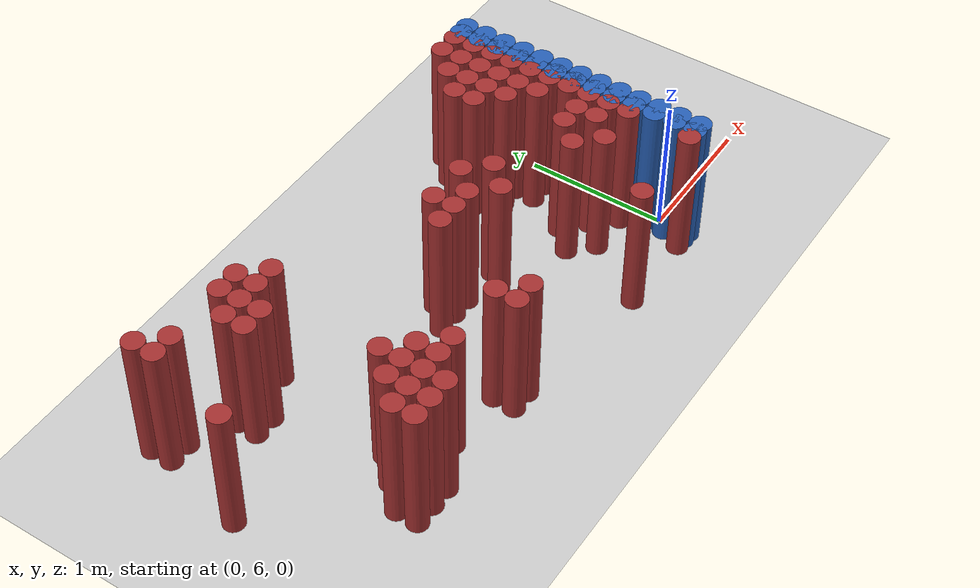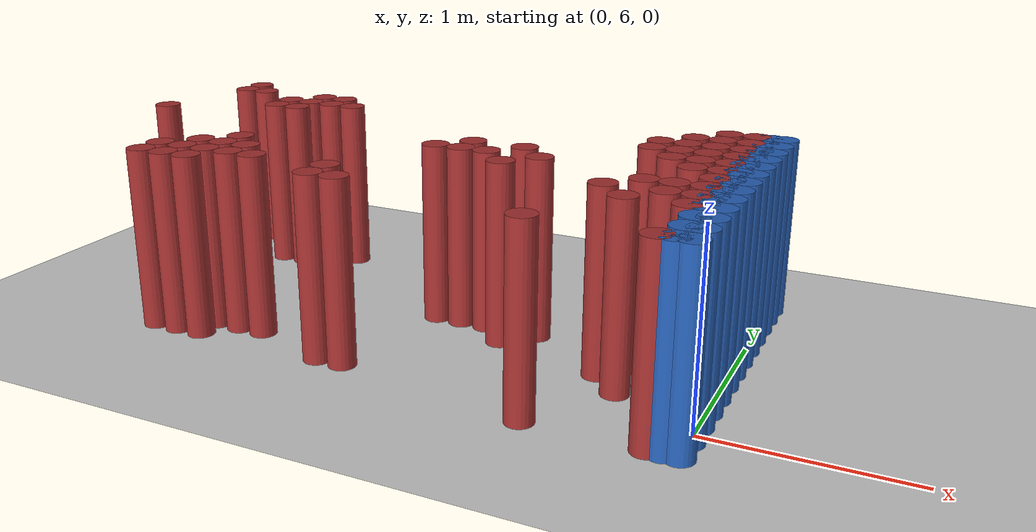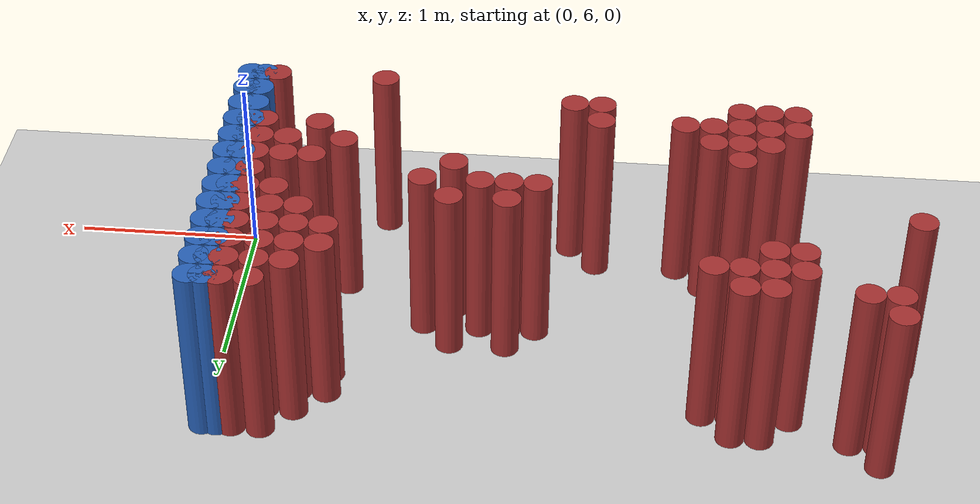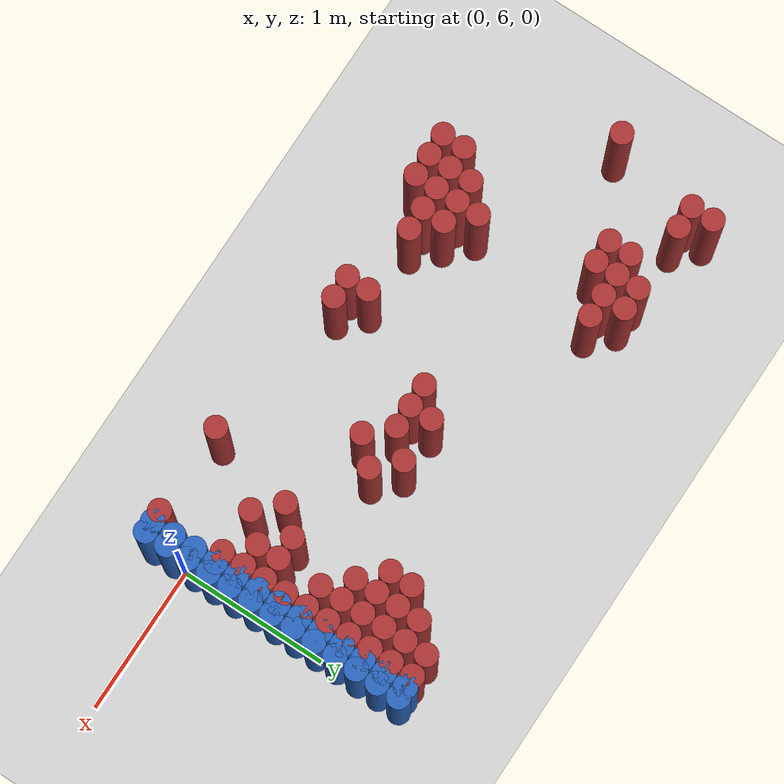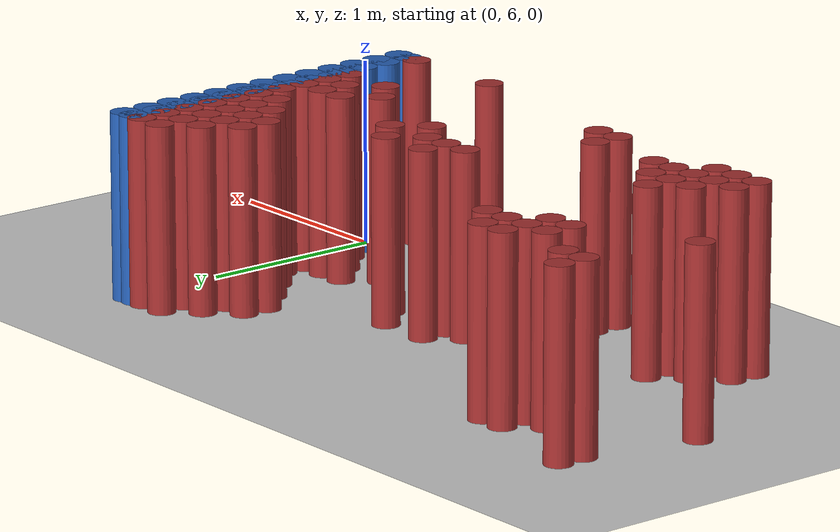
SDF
<sdf version="1.6">
 <world name="barn_world">
  <model name="ground_plane">
   <static>1</static>
   <link name="link">
    <collision name="collision">
     <geometry><plane><normal>0 0 1</normal><size>100 100</size></plane></geometry>
    </collision>
    <visual name="visual">
     <geometry><plane><normal>0 0 1</normal><size>100 100</size></plane></geometry>
     <material>
      <script><uri>file://media/materials/scripts/gazebo.material</uri><name>Gazebo/Grey</name></script>
     </material>
    </visual>
   </link>
  </model>
  <model name="unit_cylinder_211">
   <static>1</static>
   <pose>-3.6000 6.8250 0.5 0 0 0</pose>
   <link name="link">
    <collision name="collision">
     <geometry><cylinder><radius>0.075</radius><length>1</length></cylinder></geometry>
    </collision>
    <visual name="visual">
     <geometry><cylinder><radius>0.075</radius><length>1</length></cylinder></geometry>
     <material><ambient>0.648 0.192 0.192 1</ambient><diffuse>0.648 0.192 0.192 1</diffuse></material>
    </visual>
   </link>
  </model>
  <model name="unit_cylinder_219">
   <static>1</static>
   <pose>-3.4500 7.4250 0.5 0 0 0</pose>
   <link name="link">
    <collision name="collision">
     <geometry><cylinder><radius>0.075</radius><length>1</length></cylinder></geometry>
    </collision>
    <visual name="visual">
     <geometry><cylinder><radius>0.075</radius><length>1</length></cylinder></geometry>
     <material><ambient>0.648 0.192 0.192 1</ambient><diffuse>0.648 0.192 0.192 1</diffuse></material>
    </visual>
   </link>
  </model>
  <model name="unit_cylinder_220">
   <static>1</static>
   <pose>-3.4500 7.5750 0.5 0 0 0</pose>
   <link name="link">
    <collision name="collision">
     <geometry><cylinder><radius>0.075</radius><length>1</length></cylinder></geometry>
    </collision>
    <visual name="visual">
     <geometry><cylinder><radius>0.075</radius><length>1</length></cylinder></geometry>
     <material><ambient>0.648 0.192 0.192 1</ambient><diffuse>0.648 0.192 0.192 1</diffuse></material>
    </visual>
   </link>
  </model>
  <model name="unit_cylinder_227">
   <static>1</static>
   <pose>-3.3000 7.4250 0.5 0 0 0</pose>
   <link name="link">
    <collision name="collision">
     <geometry><cylinder><radius>0.075</radius><length>1</length></cylinder></geometry>
    </collision>
    <visual name="visual">
     <geometry><cylinder><radius>0.075</radius><length>1</length></cylinder></geometry>
     <material><ambient>0.648 0.192 0.192 1</ambient><diffuse>0.648 0.192 0.192 1</diffuse></material>
    </visual>
   </link>
  </model>
  <model name="unit_cylinder_230">
   <static>1</static>
   <pose>-3.0000 5.9250 0.5 0 0 0</pose>
   <link name="link">
    <collision name="collision">
     <geometry><cylinder><radius>0.075</radius><length>1</length></cylinder></geometry>
    </collision>
    <visual name="visual">
     <geometry><cylinder><radius>0.075</radius><length>1</length></cylinder></geometry>
     <material><ambient>0.648 0.192 0.192 1</ambient><diffuse>0.648 0.192 0.192 1</diffuse></material>
    </visual>
   </link>
  </model>
  <model name="unit_cylinder_231">
   <static>1</static>
   <pose>-3.0000 6.0750 0.5 0 0 0</pose>
   <link name="link">
    <collision name="collision">
     <geometry><cylinder><radius>0.075</radius><length>1</length></cylinder></geometry>
    </collision>
    <visual name="visual">
     <geometry><cylinder><radius>0.075</radius><length>1</length></cylinder></geometry>
     <material><ambient>0.648 0.192 0.192 1</ambient><diffuse>0.648 0.192 0.192 1</diffuse></material>
    </visual>
   </link>
  </model>
  <model name="unit_cylinder_232">
   <static>1</static>
   <pose>-3.0000 7.1250 0.5 0 0 0</pose>
   <link name="link">
    <collision name="collision">
     <geometry><cylinder><radius>0.075</radius><length>1</length></cylinder></geometry>
    </collision>
    <visual name="visual">
     <geometry><cylinder><radius>0.075</radius><length>1</length></cylinder></geometry>
     <material><ambient>0.648 0.192 0.192 1</ambient><diffuse>0.648 0.192 0.192 1</diffuse></material>
    </visual>
   </link>
  </model>
  <model name="unit_cylinder_233">
   <static>1</static>
   <pose>-3.0000 7.2750 0.5 0 0 0</pose>
   <link name="link">
    <collision name="collision">
     <geometry><cylinder><radius>0.075</radius><length>1</length></cylinder></geometry>
    </collision>
    <visual name="visual">
     <geometry><cylinder><radius>0.075</radius><length>1</length></cylinder></geometry>
     <material><ambient>0.648 0.192 0.192 1</ambient><diffuse>0.648 0.192 0.192 1</diffuse></material>
    </visual>
   </link>
  </model>
  <model name="unit_cylinder_235">
   <static>1</static>
   <pose>-2.8500 5.9250 0.5 0 0 0</pose>
   <link name="link">
    <collision name="collision">
     <geometry><cylinder><radius>0.075</radius><length>1</length></cylinder></geometry>
    </collision>
    <visual name="visual">
     <geometry><cylinder><radius>0.075</radius><length>1</length></cylinder></geometry>
     <material><ambient>0.648 0.192 0.192 1</ambient><diffuse>0.648 0.192 0.192 1</diffuse></material>
    </visual>
   </link>
  </model>
  <model name="unit_cylinder_236">
   <static>1</static>
   <pose>-2.8500 6.0750 0.5 0 0 0</pose>
   <link name="link">
    <collision name="collision">
     <geometry><cylinder><radius>0.075</radius><length>1</length></cylinder></geometry>
    </collision>
    <visual name="visual">
     <geometry><cylinder><radius>0.075</radius><length>1</length></cylinder></geometry>
     <material><ambient>0.648 0.192 0.192 1</ambient><diffuse>0.648 0.192 0.192 1</diffuse></material>
    </visual>
   </link>
  </model>
  <model name="unit_cylinder_237">
   <static>1</static>
   <pose>-2.8500 6.2250 0.5 0 0 0</pose>
   <link name="link">
    <collision name="collision">
     <geometry><cylinder><radius>0.075</radius><length>1</length></cylinder></geometry>
    </collision>
    <visual name="visual">
     <geometry><cylinder><radius>0.075</radius><length>1</length></cylinder></geometry>
     <material><ambient>0.648 0.192 0.192 1</ambient><diffuse>0.648 0.192 0.192 1</diffuse></material>
    </visual>
   </link>
  </model>
  <model name="unit_cylinder_238">
   <static>1</static>
   <pose>-2.8500 7.1250 0.5 0 0 0</pose>
   <link name="link">
    <collision name="collision">
     <geometry><cylinder><radius>0.075</radius><length>1</length></cylinder></geometry>
    </collision>
    <visual name="visual">
     <geometry><cylinder><radius>0.075</radius><length>1</length></cylinder></geometry>
     <material><ambient>0.648 0.192 0.192 1</ambient><diffuse>0.648 0.192 0.192 1</diffuse></material>
    </visual>
   </link>
  </model>
  <model name="unit_cylinder_239">
   <static>1</static>
   <pose>-2.8500 7.2750 0.5 0 0 0</pose>
   <link name="link">
    <collision name="collision">
     <geometry><cylinder><radius>0.075</radius><length>1</length></cylinder></geometry>
    </collision>
    <visual name="visual">
     <geometry><cylinder><radius>0.075</radius><length>1</length></cylinder></geometry>
     <material><ambient>0.648 0.192 0.192 1</ambient><diffuse>0.648 0.192 0.192 1</diffuse></material>
    </visual>
   </link>
  </model>
  <model name="unit_cylinder_240">
   <static>1</static>
   <pose>-2.8500 7.4250 0.5 0 0 0</pose>
   <link name="link">
    <collision name="collision">
     <geometry><cylinder><radius>0.075</radius><length>1</length></cylinder></geometry>
    </collision>
    <visual name="visual">
     <geometry><cylinder><radius>0.075</radius><length>1</length></cylinder></geometry>
     <material><ambient>0.648 0.192 0.192 1</ambient><diffuse>0.648 0.192 0.192 1</diffuse></material>
    </visual>
   </link>
  </model>
  <model name="unit_cylinder_241">
   <static>1</static>
   <pose>-2.7000 5.9250 0.5 0 0 0</pose>
   <link name="link">
    <collision name="collision">
     <geometry><cylinder><radius>0.075</radius><length>1</length></cylinder></geometry>
    </collision>
    <visual name="visual">
     <geometry><cylinder><radius>0.075</radius><length>1</length></cylinder></geometry>
     <material><ambient>0.648 0.192 0.192 1</ambient><diffuse>0.648 0.192 0.192 1</diffuse></material>
    </visual>
   </link>
  </model>
  <model name="unit_cylinder_242">
   <static>1</static>
   <pose>-2.7000 6.0750 0.5 0 0 0</pose>
   <link name="link">
    <collision name="collision">
     <geometry><cylinder><radius>0.075</radius><length>1</length></cylinder></geometry>
    </collision>
    <visual name="visual">
     <geometry><cylinder><radius>0.075</radius><length>1</length></cylinder></geometry>
     <material><ambient>0.648 0.192 0.192 1</ambient><diffuse>0.648 0.192 0.192 1</diffuse></material>
    </visual>
   </link>
  </model>
  <model name="unit_cylinder_243">
   <static>1</static>
   <pose>-2.7000 6.2250 0.5 0 0 0</pose>
   <link name="link">
    <collision name="collision">
     <geometry><cylinder><radius>0.075</radius><length>1</length></cylinder></geometry>
    </collision>
    <visual name="visual">
     <geometry><cylinder><radius>0.075</radius><length>1</length></cylinder></geometry>
     <material><ambient>0.648 0.192 0.192 1</ambient><diffuse>0.648 0.192 0.192 1</diffuse></material>
    </visual>
   </link>
  </model>
  <model name="unit_cylinder_244">
   <static>1</static>
   <pose>-2.7000 6.3750 0.5 0 0 0</pose>
   <link name="link">
    <collision name="collision">
     <geometry><cylinder><radius>0.075</radius><length>1</length></cylinder></geometry>
    </collision>
    <visual name="visual">
     <geometry><cylinder><radius>0.075</radius><length>1</length></cylinder></geometry>
     <material><ambient>0.648 0.192 0.192 1</ambient><diffuse>0.648 0.192 0.192 1</diffuse></material>
    </visual>
   </link>
  </model>
  <model name="unit_cylinder_245">
   <static>1</static>
   <pose>-2.7000 7.2750 0.5 0 0 0</pose>
   <link name="link">
    <collision name="collision">
     <geometry><cylinder><radius>0.075</radius><length>1</length></cylinder></geometry>
    </collision>
    <visual name="visual">
     <geometry><cylinder><radius>0.075</radius><length>1</length></cylinder></geometry>
     <material><ambient>0.648 0.192 0.192 1</ambient><diffuse>0.648 0.192 0.192 1</diffuse></material>
    </visual>
   </link>
  </model>
  <model name="unit_cylinder_246">
   <static>1</static>
   <pose>-2.7000 7.4250 0.5 0 0 0</pose>
   <link name="link">
    <collision name="collision">
     <geometry><cylinder><radius>0.075</radius><length>1</length></cylinder></geometry>
    </collision>
    <visual name="visual">
     <geometry><cylinder><radius>0.075</radius><length>1</length></cylinder></geometry>
     <material><ambient>0.648 0.192 0.192 1</ambient><diffuse>0.648 0.192 0.192 1</diffuse></material>
    </visual>
   </link>
  </model>
  <model name="unit_cylinder_247">
   <static>1</static>
   <pose>-2.5500 6.0750 0.5 0 0 0</pose>
   <link name="link">
    <collision name="collision">
     <geometry><cylinder><radius>0.075</radius><length>1</length></cylinder></geometry>
    </collision>
    <visual name="visual">
     <geometry><cylinder><radius>0.075</radius><length>1</length></cylinder></geometry>
     <material><ambient>0.648 0.192 0.192 1</ambient><diffuse>0.648 0.192 0.192 1</diffuse></material>
    </visual>
   </link>
  </model>
  <model name="unit_cylinder_248">
   <static>1</static>
   <pose>-2.5500 6.2250 0.5 0 0 0</pose>
   <link name="link">
    <collision name="collision">
     <geometry><cylinder><radius>0.075</radius><length>1</length></cylinder></geometry>
    </collision>
    <visual name="visual">
     <geometry><cylinder><radius>0.075</radius><length>1</length></cylinder></geometry>
     <material><ambient>0.648 0.192 0.192 1</ambient><diffuse>0.648 0.192 0.192 1</diffuse></material>
    </visual>
   </link>
  </model>
  <model name="unit_cylinder_249">
   <static>1</static>
   <pose>-2.5500 7.2750 0.5 0 0 0</pose>
   <link name="link">
    <collision name="collision">
     <geometry><cylinder><radius>0.075</radius><length>1</length></cylinder></geometry>
    </collision>
    <visual name="visual">
     <geometry><cylinder><radius>0.075</radius><length>1</length></cylinder></geometry>
     <material><ambient>0.648 0.192 0.192 1</ambient><diffuse>0.648 0.192 0.192 1</diffuse></material>
    </visual>
   </link>
  </model>
  <model name="unit_cylinder_251">
   <static>1</static>
   <pose>-2.4000 6.0750 0.5 0 0 0</pose>
   <link name="link">
    <collision name="collision">
     <geometry><cylinder><radius>0.075</radius><length>1</length></cylinder></geometry>
    </collision>
    <visual name="visual">
     <geometry><cylinder><radius>0.075</radius><length>1</length></cylinder></geometry>
     <material><ambient>0.648 0.192 0.192 1</ambient><diffuse>0.648 0.192 0.192 1</diffuse></material>
    </visual>
   </link>
  </model>
  <model name="unit_cylinder_254">
   <static>1</static>
   <pose>-1.9500 5.9250 0.5 0 0 0</pose>
   <link name="link">
    <collision name="collision">
     <geometry><cylinder><radius>0.075</radius><length>1</length></cylinder></geometry>
    </collision>
    <visual name="visual">
     <geometry><cylinder><radius>0.075</radius><length>1</length></cylinder></geometry>
     <material><ambient>0.648 0.192 0.192 1</ambient><diffuse>0.648 0.192 0.192 1</diffuse></material>
    </visual>
   </link>
  </model>
  <model name="unit_cylinder_255">
   <static>1</static>
   <pose>-1.9500 6.0750 0.5 0 0 0</pose>
   <link name="link">
    <collision name="collision">
     <geometry><cylinder><radius>0.075</radius><length>1</length></cylinder></geometry>
    </collision>
    <visual name="visual">
     <geometry><cylinder><radius>0.075</radius><length>1</length></cylinder></geometry>
     <material><ambient>0.648 0.192 0.192 1</ambient><diffuse>0.648 0.192 0.192 1</diffuse></material>
    </visual>
   </link>
  </model>
  <model name="unit_cylinder_256">
   <static>1</static>
   <pose>-1.8000 5.9250 0.5 0 0 0</pose>
   <link name="link">
    <collision name="collision">
     <geometry><cylinder><radius>0.075</radius><length>1</length></cylinder></geometry>
    </collision>
    <visual name="visual">
     <geometry><cylinder><radius>0.075</radius><length>1</length></cylinder></geometry>
     <material><ambient>0.648 0.192 0.192 1</ambient><diffuse>0.648 0.192 0.192 1</diffuse></material>
    </visual>
   </link>
  </model>
  <model name="unit_cylinder_259">
   <static>1</static>
   <pose>-1.6500 6.6750 0.5 0 0 0</pose>
   <link name="link">
    <collision name="collision">
     <geometry><cylinder><radius>0.075</radius><length>1</length></cylinder></geometry>
    </collision>
    <visual name="visual">
     <geometry><cylinder><radius>0.075</radius><length>1</length></cylinder></geometry>
     <material><ambient>0.648 0.192 0.192 1</ambient><diffuse>0.648 0.192 0.192 1</diffuse></material>
    </visual>
   </link>
  </model>
  <model name="unit_cylinder_261">
   <static>1</static>
   <pose>-1.5000 6.6750 0.5 0 0 0</pose>
   <link name="link">
    <collision name="collision">
     <geometry><cylinder><radius>0.075</radius><length>1</length></cylinder></geometry>
    </collision>
    <visual name="visual">
     <geometry><cylinder><radius>0.075</radius><length>1</length></cylinder></geometry>
     <material><ambient>0.648 0.192 0.192 1</ambient><diffuse>0.648 0.192 0.192 1</diffuse></material>
    </visual>
   </link>
  </model>
  <model name="unit_cylinder_262">
   <static>1</static>
   <pose>-1.5000 6.8250 0.5 0 0 0</pose>
   <link name="link">
    <collision name="collision">
     <geometry><cylinder><radius>0.075</radius><length>1</length></cylinder></geometry>
    </collision>
    <visual name="visual">
     <geometry><cylinder><radius>0.075</radius><length>1</length></cylinder></geometry>
     <material><ambient>0.648 0.192 0.192 1</ambient><diffuse>0.648 0.192 0.192 1</diffuse></material>
    </visual>
   </link>
  </model>
  <model name="unit_cylinder_265">
   <static>1</static>
   <pose>-1.3500 6.6750 0.5 0 0 0</pose>
   <link name="link">
    <collision name="collision">
     <geometry><cylinder><radius>0.075</radius><length>1</length></cylinder></geometry>
    </collision>
    <visual name="visual">
     <geometry><cylinder><radius>0.075</radius><length>1</length></cylinder></geometry>
     <material><ambient>0.648 0.192 0.192 1</ambient><diffuse>0.648 0.192 0.192 1</diffuse></material>
    </visual>
   </link>
  </model>
  <model name="unit_cylinder_267">
   <static>1</static>
   <pose>-1.2000 6.5250 0.5 0 0 0</pose>
   <link name="link">
    <collision name="collision">
     <geometry><cylinder><radius>0.075</radius><length>1</length></cylinder></geometry>
    </collision>
    <visual name="visual">
     <geometry><cylinder><radius>0.075</radius><length>1</length></cylinder></geometry>
     <material><ambient>0.648 0.192 0.192 1</ambient><diffuse>0.648 0.192 0.192 1</diffuse></material>
    </visual>
   </link>
  </model>
  <model name="unit_cylinder_268">
   <static>1</static>
   <pose>-1.2000 6.8250 0.5 0 0 0</pose>
   <link name="link">
    <collision name="collision">
     <geometry><cylinder><radius>0.075</radius><length>1</length></cylinder></geometry>
    </collision>
    <visual name="visual">
     <geometry><cylinder><radius>0.075</radius><length>1</length></cylinder></geometry>
     <material><ambient>0.648 0.192 0.192 1</ambient><diffuse>0.648 0.192 0.192 1</diffuse></material>
    </visual>
   </link>
  </model>
  <model name="unit_cylinder_270">
   <static>1</static>
   <pose>-1.0500 6.6750 0.5 0 0 0</pose>
   <link name="link">
    <collision name="collision">
     <geometry><cylinder><radius>0.075</radius><length>1</length></cylinder></geometry>
    </collision>
    <visual name="visual">
     <geometry><cylinder><radius>0.075</radius><length>1</length></cylinder></geometry>
     <material><ambient>0.648 0.192 0.192 1</ambient><diffuse>0.648 0.192 0.192 1</diffuse></material>
    </visual>
   </link>
  </model>
  <model name="unit_cylinder_281">
   <static>1</static>
   <pose>-0.7500 5.7750 0.5 0 0 0</pose>
   <link name="link">
    <collision name="collision">
     <geometry><cylinder><radius>0.075</radius><length>1</length></cylinder></geometry>
    </collision>
    <visual name="visual">
     <geometry><cylinder><radius>0.075</radius><length>1</length></cylinder></geometry>
     <material><ambient>0.648 0.192 0.192 1</ambient><diffuse>0.648 0.192 0.192 1</diffuse></material>
    </visual>
   </link>
  </model>
  <model name="unit_cylinder_285">
   <static>1</static>
   <pose>-0.6000 6.3750 0.5 0 0 0</pose>
   <link name="link">
    <collision name="collision">
     <geometry><cylinder><radius>0.075</radius><length>1</length></cylinder></geometry>
    </collision>
    <visual name="visual">
     <geometry><cylinder><radius>0.075</radius><length>1</length></cylinder></geometry>
     <material><ambient>0.648 0.192 0.192 1</ambient><diffuse>0.648 0.192 0.192 1</diffuse></material>
    </visual>
   </link>
  </model>
  <model name="unit_cylinder_286">
   <static>1</static>
   <pose>-0.6000 7.1250 0.5 0 0 0</pose>
   <link name="link">
    <collision name="collision">
     <geometry><cylinder><radius>0.075</radius><length>1</length></cylinder></geometry>
    </collision>
    <visual name="visual">
     <geometry><cylinder><radius>0.075</radius><length>1</length></cylinder></geometry>
     <material><ambient>0.648 0.192 0.192 1</ambient><diffuse>0.648 0.192 0.192 1</diffuse></material>
    </visual>
   </link>
  </model>
  <model name="unit_cylinder_287">
   <static>1</static>
   <pose>-0.6000 7.2750 0.5 0 0 0</pose>
   <link name="link">
    <collision name="collision">
     <geometry><cylinder><radius>0.075</radius><length>1</length></cylinder></geometry>
    </collision>
    <visual name="visual">
     <geometry><cylinder><radius>0.075</radius><length>1</length></cylinder></geometry>
     <material><ambient>0.648 0.192 0.192 1</ambient><diffuse>0.648 0.192 0.192 1</diffuse></material>
    </visual>
   </link>
  </model>
  <model name="unit_cylinder_290">
   <static>1</static>
   <pose>-0.4500 6.2250 0.5 0 0 0</pose>
   <link name="link">
    <collision name="collision">
     <geometry><cylinder><radius>0.075</radius><length>1</length></cylinder></geometry>
    </collision>
    <visual name="visual">
     <geometry><cylinder><radius>0.075</radius><length>1</length></cylinder></geometry>
     <material><ambient>0.648 0.192 0.192 1</ambient><diffuse>0.648 0.192 0.192 1</diffuse></material>
    </visual>
   </link>
  </model>
  <model name="unit_cylinder_291">
   <static>1</static>
   <pose>-0.4500 6.5250 0.5 0 0 0</pose>
   <link name="link">
    <collision name="collision">
     <geometry><cylinder><radius>0.075</radius><length>1</length></cylinder></geometry>
    </collision>
    <visual name="visual">
     <geometry><cylinder><radius>0.075</radius><length>1</length></cylinder></geometry>
     <material><ambient>0.648 0.192 0.192 1</ambient><diffuse>0.648 0.192 0.192 1</diffuse></material>
    </visual>
   </link>
  </model>
  <model name="unit_cylinder_292">
   <static>1</static>
   <pose>-0.4500 6.9750 0.5 0 0 0</pose>
   <link name="link">
    <collision name="collision">
     <geometry><cylinder><radius>0.075</radius><length>1</length></cylinder></geometry>
    </collision>
    <visual name="visual">
     <geometry><cylinder><radius>0.075</radius><length>1</length></cylinder></geometry>
     <material><ambient>0.648 0.192 0.192 1</ambient><diffuse>0.648 0.192 0.192 1</diffuse></material>
    </visual>
   </link>
  </model>
  <model name="unit_cylinder_293">
   <static>1</static>
   <pose>-0.4500 7.1250 0.5 0 0 0</pose>
   <link name="link">
    <collision name="collision">
     <geometry><cylinder><radius>0.075</radius><length>1</length></cylinder></geometry>
    </collision>
    <visual name="visual">
     <geometry><cylinder><radius>0.075</radius><length>1</length></cylinder></geometry>
     <material><ambient>0.648 0.192 0.192 1</ambient><diffuse>0.648 0.192 0.192 1</diffuse></material>
    </visual>
   </link>
  </model>
  <model name="unit_cylinder_294">
   <static>1</static>
   <pose>-0.4500 7.2750 0.5 0 0 0</pose>
   <link name="link">
    <collision name="collision">
     <geometry><cylinder><radius>0.075</radius><length>1</length></cylinder></geometry>
    </collision>
    <visual name="visual">
     <geometry><cylinder><radius>0.075</radius><length>1</length></cylinder></geometry>
     <material><ambient>0.648 0.192 0.192 1</ambient><diffuse>0.648 0.192 0.192 1</diffuse></material>
    </visual>
   </link>
  </model>
  <model name="unit_cylinder_295">
   <static>1</static>
   <pose>-0.4500 7.4250 0.5 0 0 0</pose>
   <link name="link">
    <collision name="collision">
     <geometry><cylinder><radius>0.075</radius><length>1</length></cylinder></geometry>
    </collision>
    <visual name="visual">
     <geometry><cylinder><radius>0.075</radius><length>1</length></cylinder></geometry>
     <material><ambient>0.648 0.192 0.192 1</ambient><diffuse>0.648 0.192 0.192 1</diffuse></material>
    </visual>
   </link>
  </model>
  <model name="unit_cylinder_300">
   <static>1</static>
   <pose>-0.3000 6.3750 0.5 0 0 0</pose>
   <link name="link">
    <collision name="collision">
     <geometry><cylinder><radius>0.075</radius><length>1</length></cylinder></geometry>
    </collision>
    <visual name="visual">
     <geometry><cylinder><radius>0.075</radius><length>1</length></cylinder></geometry>
     <material><ambient>0.648 0.192 0.192 1</ambient><diffuse>0.648 0.192 0.192 1</diffuse></material>
    </visual>
   </link>
  </model>
  <model name="unit_cylinder_301">
   <static>1</static>
   <pose>-0.3000 6.5250 0.5 0 0 0</pose>
   <link name="link">
    <collision name="collision">
     <geometry><cylinder><radius>0.075</radius><length>1</length></cylinder></geometry>
    </collision>
    <visual name="visual">
     <geometry><cylinder><radius>0.075</radius><length>1</length></cylinder></geometry>
     <material><ambient>0.648 0.192 0.192 1</ambient><diffuse>0.648 0.192 0.192 1</diffuse></material>
    </visual>
   </link>
  </model>
  <model name="unit_cylinder_302">
   <static>1</static>
   <pose>-0.3000 6.8250 0.5 0 0 0</pose>
   <link name="link">
    <collision name="collision">
     <geometry><cylinder><radius>0.075</radius><length>1</length></cylinder></geometry>
    </collision>
    <visual name="visual">
     <geometry><cylinder><radius>0.075</radius><length>1</length></cylinder></geometry>
     <material><ambient>0.648 0.192 0.192 1</ambient><diffuse>0.648 0.192 0.192 1</diffuse></material>
    </visual>
   </link>
  </model>
  <model name="unit_cylinder_303">
   <static>1</static>
   <pose>-0.3000 6.9750 0.5 0 0 0</pose>
   <link name="link">
    <collision name="collision">
     <geometry><cylinder><radius>0.075</radius><length>1</length></cylinder></geometry>
    </collision>
    <visual name="visual">
     <geometry><cylinder><radius>0.075</radius><length>1</length></cylinder></geometry>
     <material><ambient>0.648 0.192 0.192 1</ambient><diffuse>0.648 0.192 0.192 1</diffuse></material>
    </visual>
   </link>
  </model>
  <model name="unit_cylinder_304">
   <static>1</static>
   <pose>-0.3000 7.1250 0.5 0 0 0</pose>
   <link name="link">
    <collision name="collision">
     <geometry><cylinder><radius>0.075</radius><length>1</length></cylinder></geometry>
    </collision>
    <visual name="visual">
     <geometry><cylinder><radius>0.075</radius><length>1</length></cylinder></geometry>
     <material><ambient>0.648 0.192 0.192 1</ambient><diffuse>0.648 0.192 0.192 1</diffuse></material>
    </visual>
   </link>
  </model>
  <model name="unit_cylinder_305">
   <static>1</static>
   <pose>-0.3000 7.2750 0.5 0 0 0</pose>
   <link name="link">
    <collision name="collision">
     <geometry><cylinder><radius>0.075</radius><length>1</length></cylinder></geometry>
    </collision>
    <visual name="visual">
     <geometry><cylinder><radius>0.075</radius><length>1</length></cylinder></geometry>
     <material><ambient>0.648 0.192 0.192 1</ambient><diffuse>0.648 0.192 0.192 1</diffuse></material>
    </visual>
   </link>
  </model>
  <model name="unit_cylinder_306">
   <static>1</static>
   <pose>-0.3000 7.4250 0.5 0 0 0</pose>
   <link name="link">
    <collision name="collision">
     <geometry><cylinder><radius>0.075</radius><length>1</length></cylinder></geometry>
    </collision>
    <visual name="visual">
     <geometry><cylinder><radius>0.075</radius><length>1</length></cylinder></geometry>
     <material><ambient>0.648 0.192 0.192 1</ambient><diffuse>0.648 0.192 0.192 1</diffuse></material>
    </visual>
   </link>
  </model>
  <model name="unit_cylinder_307">
   <static>1</static>
   <pose>-0.3000 7.5750 0.5 0 0 0</pose>
   <link name="link">
    <collision name="collision">
     <geometry><cylinder><radius>0.075</radius><length>1</length></cylinder></geometry>
    </collision>
    <visual name="visual">
     <geometry><cylinder><radius>0.075</radius><length>1</length></cylinder></geometry>
     <material><ambient>0.648 0.192 0.192 1</ambient><diffuse>0.648 0.192 0.192 1</diffuse></material>
    </visual>
   </link>
  </model>
  <model name="unit_cylinder_313">
   <static>1</static>
   <pose>-0.1500 5.7750 0.5 0 0 0</pose>
   <link name="link">
    <collision name="collision">
     <geometry><cylinder><radius>0.075</radius><length>1</length></cylinder></geometry>
    </collision>
    <visual name="visual">
     <geometry><cylinder><radius>0.075</radius><length>1</length></cylinder></geometry>
     <material><ambient>0.648 0.192 0.192 1</ambient><diffuse>0.648 0.192 0.192 1</diffuse></material>
    </visual>
   </link>
  </model>
  <model name="unit_cylinder_314">
   <static>1</static>
   <pose>-0.1500 6.2250 0.5 0 0 0</pose>
   <link name="link">
    <collision name="collision">
     <geometry><cylinder><radius>0.075</radius><length>1</length></cylinder></geometry>
    </collision>
    <visual name="visual">
     <geometry><cylinder><radius>0.075</radius><length>1</length></cylinder></geometry>
     <material><ambient>0.648 0.192 0.192 1</ambient><diffuse>0.648 0.192 0.192 1</diffuse></material>
    </visual>
   </link>
  </model>
  <model name="unit_cylinder_315">
   <static>1</static>
   <pose>-0.1500 6.3750 0.5 0 0 0</pose>
   <link name="link">
    <collision name="collision">
     <geometry><cylinder><radius>0.075</radius><length>1</length></cylinder></geometry>
    </collision>
    <visual name="visual">
     <geometry><cylinder><radius>0.075</radius><length>1</length></cylinder></geometry>
     <material><ambient>0.648 0.192 0.192 1</ambient><diffuse>0.648 0.192 0.192 1</diffuse></material>
    </visual>
   </link>
  </model>
  <model name="unit_cylinder_316">
   <static>1</static>
   <pose>-0.1500 6.5250 0.5 0 0 0</pose>
   <link name="link">
    <collision name="collision">
     <geometry><cylinder><radius>0.075</radius><length>1</length></cylinder></geometry>
    </collision>
    <visual name="visual">
     <geometry><cylinder><radius>0.075</radius><length>1</length></cylinder></geometry>
     <material><ambient>0.648 0.192 0.192 1</ambient><diffuse>0.648 0.192 0.192 1</diffuse></material>
    </visual>
   </link>
  </model>
  <model name="unit_cylinder_317">
   <static>1</static>
   <pose>-0.1500 6.6750 0.5 0 0 0</pose>
   <link name="link">
    <collision name="collision">
     <geometry><cylinder><radius>0.075</radius><length>1</length></cylinder></geometry>
    </collision>
    <visual name="visual">
     <geometry><cylinder><radius>0.075</radius><length>1</length></cylinder></geometry>
     <material><ambient>0.648 0.192 0.192 1</ambient><diffuse>0.648 0.192 0.192 1</diffuse></material>
    </visual>
   </link>
  </model>
  <model name="unit_cylinder_318">
   <static>1</static>
   <pose>-0.1500 6.8250 0.5 0 0 0</pose>
   <link name="link">
    <collision name="collision">
     <geometry><cylinder><radius>0.075</radius><length>1</length></cylinder></geometry>
    </collision>
    <visual name="visual">
     <geometry><cylinder><radius>0.075</radius><length>1</length></cylinder></geometry>
     <material><ambient>0.648 0.192 0.192 1</ambient><diffuse>0.648 0.192 0.192 1</diffuse></material>
    </visual>
   </link>
  </model>
  <model name="unit_cylinder_319">
   <static>1</static>
   <pose>-0.1500 6.9750 0.5 0 0 0</pose>
   <link name="link">
    <collision name="collision">
     <geometry><cylinder><radius>0.075</radius><length>1</length></cylinder></geometry>
    </collision>
    <visual name="visual">
     <geometry><cylinder><radius>0.075</radius><length>1</length></cylinder></geometry>
     <material><ambient>0.648 0.192 0.192 1</ambient><diffuse>0.648 0.192 0.192 1</diffuse></material>
    </visual>
   </link>
  </model>
  <model name="unit_cylinder_320">
   <static>1</static>
   <pose>-0.1500 7.1250 0.5 0 0 0</pose>
   <link name="link">
    <collision name="collision">
     <geometry><cylinder><radius>0.075</radius><length>1</length></cylinder></geometry>
    </collision>
    <visual name="visual">
     <geometry><cylinder><radius>0.075</radius><length>1</length></cylinder></geometry>
     <material><ambient>0.648 0.192 0.192 1</ambient><diffuse>0.648 0.192 0.192 1</diffuse></material>
    </visual>
   </link>
  </model>
  <model name="unit_cylinder_321">
   <static>1</static>
   <pose>-0.1500 7.2750 0.5 0 0 0</pose>
   <link name="link">
    <collision name="collision">
     <geometry><cylinder><radius>0.075</radius><length>1</length></cylinder></geometry>
    </collision>
    <visual name="visual">
     <geometry><cylinder><radius>0.075</radius><length>1</length></cylinder></geometry>
     <material><ambient>0.648 0.192 0.192 1</ambient><diffuse>0.648 0.192 0.192 1</diffuse></material>
    </visual>
   </link>
  </model>
  <model name="unit_cylinder_322">
   <static>1</static>
   <pose>-0.1500 7.4250 0.5 0 0 0</pose>
   <link name="link">
    <collision name="collision">
     <geometry><cylinder><radius>0.075</radius><length>1</length></cylinder></geometry>
    </collision>
    <visual name="visual">
     <geometry><cylinder><radius>0.075</radius><length>1</length></cylinder></geometry>
     <material><ambient>0.648 0.192 0.192 1</ambient><diffuse>0.648 0.192 0.192 1</diffuse></material>
    </visual>
   </link>
  </model>
  <model name="unit_cylinder_323">
   <static>1</static>
   <pose>-0.1500 7.5750 0.5 0 0 0</pose>
   <link name="link">
    <collision name="collision">
     <geometry><cylinder><radius>0.075</radius><length>1</length></cylinder></geometry>
    </collision>
    <visual name="visual">
     <geometry><cylinder><radius>0.075</radius><length>1</length></cylinder></geometry>
     <material><ambient>0.648 0.192 0.192 1</ambient><diffuse>0.648 0.192 0.192 1</diffuse></material>
    </visual>
   </link>
  </model>
  <model name="unit_cylinder_334">
   <static>1</static>
   <pose>0.0000 5.7750 0.5 0 0 0</pose>
   <link name="link">
    <collision name="collision">
     <geometry><cylinder><radius>0.075</radius><length>1</length></cylinder></geometry>
    </collision>
    <visual name="visual">
     <geometry><cylinder><radius>0.075</radius><length>1</length></cylinder></geometry>
     <material><ambient>0.152 0.379 0.72 1</ambient><diffuse>0.152 0.379 0.72 1</diffuse></material>
    </visual>
   </link>
  </model>
  <model name="unit_cylinder_335">
   <static>1</static>
   <pose>0.0000 5.9250 0.5 0 0 0</pose>
   <link name="link">
    <collision name="collision">
     <geometry><cylinder><radius>0.075</radius><length>1</length></cylinder></geometry>
    </collision>
    <visual name="visual">
     <geometry><cylinder><radius>0.075</radius><length>1</length></cylinder></geometry>
     <material><ambient>0.152 0.379 0.72 1</ambient><diffuse>0.152 0.379 0.72 1</diffuse></material>
    </visual>
   </link>
  </model>
  <model name="unit_cylinder_336">
   <static>1</static>
   <pose>0.0000 6.0750 0.5 0 0 0</pose>
   <link name="link">
    <collision name="collision">
     <geometry><cylinder><radius>0.075</radius><length>1</length></cylinder></geometry>
    </collision>
    <visual name="visual">
     <geometry><cylinder><radius>0.075</radius><length>1</length></cylinder></geometry>
     <material><ambient>0.152 0.379 0.72 1</ambient><diffuse>0.152 0.379 0.72 1</diffuse></material>
    </visual>
   </link>
  </model>
  <model name="unit_cylinder_337">
   <static>1</static>
   <pose>0.0000 6.2250 0.5 0 0 0</pose>
   <link name="link">
    <collision name="collision">
     <geometry><cylinder><radius>0.075</radius><length>1</length></cylinder></geometry>
    </collision>
    <visual name="visual">
     <geometry><cylinder><radius>0.075</radius><length>1</length></cylinder></geometry>
     <material><ambient>0.152 0.379 0.72 1</ambient><diffuse>0.152 0.379 0.72 1</diffuse></material>
    </visual>
   </link>
  </model>
  <model name="unit_cylinder_338">
   <static>1</static>
   <pose>0.0000 6.3750 0.5 0 0 0</pose>
   <link name="link">
    <collision name="collision">
     <geometry><cylinder><radius>0.075</radius><length>1</length></cylinder></geometry>
    </collision>
    <visual name="visual">
     <geometry><cylinder><radius>0.075</radius><length>1</length></cylinder></geometry>
     <material><ambient>0.152 0.379 0.72 1</ambient><diffuse>0.152 0.379 0.72 1</diffuse></material>
    </visual>
   </link>
  </model>
  <model name="unit_cylinder_339">
   <static>1</static>
   <pose>0.0000 6.5250 0.5 0 0 0</pose>
   <link name="link">
    <collision name="collision">
     <geometry><cylinder><radius>0.075</radius><length>1</length></cylinder></geometry>
    </collision>
    <visual name="visual">
     <geometry><cylinder><radius>0.075</radius><length>1</length></cylinder></geometry>
     <material><ambient>0.152 0.379 0.72 1</ambient><diffuse>0.152 0.379 0.72 1</diffuse></material>
    </visual>
   </link>
  </model>
  <model name="unit_cylinder_340">
   <static>1</static>
   <pose>0.0000 6.6750 0.5 0 0 0</pose>
   <link name="link">
    <collision name="collision">
     <geometry><cylinder><radius>0.075</radius><length>1</length></cylinder></geometry>
    </collision>
    <visual name="visual">
     <geometry><cylinder><radius>0.075</radius><length>1</length></cylinder></geometry>
     <material><ambient>0.152 0.379 0.72 1</ambient><diffuse>0.152 0.379 0.72 1</diffuse></material>
    </visual>
   </link>
  </model>
  <model name="unit_cylinder_341">
   <static>1</static>
   <pose>0.0000 6.8250 0.5 0 0 0</pose>
   <link name="link">
    <collision name="collision">
     <geometry><cylinder><radius>0.075</radius><length>1</length></cylinder></geometry>
    </collision>
    <visual name="visual">
     <geometry><cylinder><radius>0.075</radius><length>1</length></cylinder></geometry>
     <material><ambient>0.152 0.379 0.72 1</ambient><diffuse>0.152 0.379 0.72 1</diffuse></material>
    </visual>
   </link>
  </model>
  <model name="unit_cylinder_342">
   <static>1</static>
   <pose>0.0000 6.9750 0.5 0 0 0</pose>
   <link name="link">
    <collision name="collision">
     <geometry><cylinder><radius>0.075</radius><length>1</length></cylinder></geometry>
    </collision>
    <visual name="visual">
     <geometry><cylinder><radius>0.075</radius><length>1</length></cylinder></geometry>
     <material><ambient>0.152 0.379 0.72 1</ambient><diffuse>0.152 0.379 0.72 1</diffuse></material>
    </visual>
   </link>
  </model>
  <model name="unit_cylinder_343">
   <static>1</static>
   <pose>0.0000 7.1250 0.5 0 0 0</pose>
   <link name="link">
    <collision name="collision">
     <geometry><cylinder><radius>0.075</radius><length>1</length></cylinder></geometry>
    </collision>
    <visual name="visual">
     <geometry><cylinder><radius>0.075</radius><length>1</length></cylinder></geometry>
     <material><ambient>0.152 0.379 0.72 1</ambient><diffuse>0.152 0.379 0.72 1</diffuse></material>
    </visual>
   </link>
  </model>
  <model name="unit_cylinder_344">
   <static>1</static>
   <pose>0.0000 7.2750 0.5 0 0 0</pose>
   <link name="link">
    <collision name="collision">
     <geometry><cylinder><radius>0.075</radius><length>1</length></cylinder></geometry>
    </collision>
    <visual name="visual">
     <geometry><cylinder><radius>0.075</radius><length>1</length></cylinder></geometry>
     <material><ambient>0.152 0.379 0.72 1</ambient><diffuse>0.152 0.379 0.72 1</diffuse></material>
    </visual>
   </link>
  </model>
  <model name="unit_cylinder_345">
   <static>1</static>
   <pose>0.0000 7.4250 0.5 0 0 0</pose>
   <link name="link">
    <collision name="collision">
     <geometry><cylinder><radius>0.075</radius><length>1</length></cylinder></geometry>
    </collision>
    <visual name="visual">
     <geometry><cylinder><radius>0.075</radius><length>1</length></cylinder></geometry>
     <material><ambient>0.152 0.379 0.72 1</ambient><diffuse>0.152 0.379 0.72 1</diffuse></material>
    </visual>
   </link>
  </model>
  <model name="unit_cylinder_346">
   <static>1</static>
   <pose>0.0000 7.5750 0.5 0 0 0</pose>
   <link name="link">
    <collision name="collision">
     <geometry><cylinder><radius>0.075</radius><length>1</length></cylinder></geometry>
    </collision>
    <visual name="visual">
     <geometry><cylinder><radius>0.075</radius><length>1</length></cylinder></geometry>
     <material><ambient>0.152 0.379 0.72 1</ambient><diffuse>0.152 0.379 0.72 1</diffuse></material>
    </visual>
   </link>
  </model>
  <model name="unit_cylinder_398">
   <static>1</static>
   <pose>-0.0750 5.7750 0.5 0 0 0</pose>
   <link name="link">
    <collision name="collision">
     <geometry><cylinder><radius>0.075</radius><length>1</length></cylinder></geometry>
    </collision>
    <visual name="visual">
     <geometry><cylinder><radius>0.075</radius><length>1</length></cylinder></geometry>
     <material><ambient>0.152 0.379 0.72 1</ambient><diffuse>0.152 0.379 0.72 1</diffuse></material>
    </visual>
   </link>
  </model>
  <model name="unit_cylinder_400">
   <static>1</static>
   <pose>-0.0750 5.9250 0.5 0 0 0</pose>
   <link name="link">
    <collision name="collision">
     <geometry><cylinder><radius>0.075</radius><length>1</length></cylinder></geometry>
    </collision>
    <visual name="visual">
     <geometry><cylinder><radius>0.075</radius><length>1</length></cylinder></geometry>
     <material><ambient>0.152 0.379 0.72 1</ambient><diffuse>0.152 0.379 0.72 1</diffuse></material>
    </visual>
   </link>
  </model>
  <model name="unit_cylinder_402">
   <static>1</static>
   <pose>-0.0750 6.0750 0.5 0 0 0</pose>
   <link name="link">
    <collision name="collision">
     <geometry><cylinder><radius>0.075</radius><length>1</length></cylinder></geometry>
    </collision>
    <visual name="visual">
     <geometry><cylinder><radius>0.075</radius><length>1</length></cylinder></geometry>
     <material><ambient>0.152 0.379 0.72 1</ambient><diffuse>0.152 0.379 0.72 1</diffuse></material>
    </visual>
   </link>
  </model>
  <model name="unit_cylinder_404">
   <static>1</static>
   <pose>-0.0750 6.2250 0.5 0 0 0</pose>
   <link name="link">
    <collision name="collision">
     <geometry><cylinder><radius>0.075</radius><length>1</length></cylinder></geometry>
    </collision>
    <visual name="visual">
     <geometry><cylinder><radius>0.075</radius><length>1</length></cylinder></geometry>
     <material><ambient>0.152 0.379 0.72 1</ambient><diffuse>0.152 0.379 0.72 1</diffuse></material>
    </visual>
   </link>
  </model>
  <model name="unit_cylinder_406">
   <static>1</static>
   <pose>-0.0750 6.3750 0.5 0 0 0</pose>
   <link name="link">
    <collision name="collision">
     <geometry><cylinder><radius>0.075</radius><length>1</length></cylinder></geometry>
    </collision>
    <visual name="visual">
     <geometry><cylinder><radius>0.075</radius><length>1</length></cylinder></geometry>
     <material><ambient>0.152 0.379 0.72 1</ambient><diffuse>0.152 0.379 0.72 1</diffuse></material>
    </visual>
   </link>
  </model>
  <model name="unit_cylinder_408">
   <static>1</static>
   <pose>-0.0750 6.5250 0.5 0 0 0</pose>
   <link name="link">
    <collision name="collision">
     <geometry><cylinder><radius>0.075</radius><length>1</length></cylinder></geometry>
    </collision>
    <visual name="visual">
     <geometry><cylinder><radius>0.075</radius><length>1</length></cylinder></geometry>
     <material><ambient>0.152 0.379 0.72 1</ambient><diffuse>0.152 0.379 0.72 1</diffuse></material>
    </visual>
   </link>
  </model>
  <model name="unit_cylinder_410">
   <static>1</static>
   <pose>-0.0750 6.6750 0.5 0 0 0</pose>
   <link name="link">
    <collision name="collision">
     <geometry><cylinder><radius>0.075</radius><length>1</length></cylinder></geometry>
    </collision>
    <visual name="visual">
     <geometry><cylinder><radius>0.075</radius><length>1</length></cylinder></geometry>
     <material><ambient>0.152 0.379 0.72 1</ambient><diffuse>0.152 0.379 0.72 1</diffuse></material>
    </visual>
   </link>
  </model>
  <model name="unit_cylinder_412">
   <static>1</static>
   <pose>-0.0750 6.8250 0.5 0 0 0</pose>
   <link name="link">
    <collision name="collision">
     <geometry><cylinder><radius>0.075</radius><length>1</length></cylinder></geometry>
    </collision>
    <visual name="visual">
     <geometry><cylinder><radius>0.075</radius><length>1</length></cylinder></geometry>
     <material><ambient>0.152 0.379 0.72 1</ambient><diffuse>0.152 0.379 0.72 1</diffuse></material>
    </visual>
   </link>
  </model>
  <model name="unit_cylinder_414">
   <static>1</static>
   <pose>-0.0750 6.9750 0.5 0 0 0</pose>
   <link name="link">
    <collision name="collision">
     <geometry><cylinder><radius>0.075</radius><length>1</length></cylinder></geometry>
    </collision>
    <visual name="visual">
     <geometry><cylinder><radius>0.075</radius><length>1</length></cylinder></geometry>
     <material><ambient>0.152 0.379 0.72 1</ambient><diffuse>0.152 0.379 0.72 1</diffuse></material>
    </visual>
   </link>
  </model>
  <model name="unit_cylinder_416">
   <static>1</static>
   <pose>-0.0750 7.1250 0.5 0 0 0</pose>
   <link name="link">
    <collision name="collision">
     <geometry><cylinder><radius>0.075</radius><length>1</length></cylinder></geometry>
    </collision>
    <visual name="visual">
     <geometry><cylinder><radius>0.075</radius><length>1</length></cylinder></geometry>
     <material><ambient>0.152 0.379 0.72 1</ambient><diffuse>0.152 0.379 0.72 1</diffuse></material>
    </visual>
   </link>
  </model>
  <model name="unit_cylinder_418">
   <static>1</static>
   <pose>-0.0750 7.2750 0.5 0 0 0</pose>
   <link name="link">
    <collision name="collision">
     <geometry><cylinder><radius>0.075</radius><length>1</length></cylinder></geometry>
    </collision>
    <visual name="visual">
     <geometry><cylinder><radius>0.075</radius><length>1</length></cylinder></geometry>
     <material><ambient>0.152 0.379 0.72 1</ambient><diffuse>0.152 0.379 0.72 1</diffuse></material>
    </visual>
   </link>
  </model>
  <model name="unit_cylinder_420">
   <static>1</static>
   <pose>-0.0750 7.4250 0.5 0 0 0</pose>
   <link name="link">
    <collision name="collision">
     <geometry><cylinder><radius>0.075</radius><length>1</length></cylinder></geometry>
    </collision>
    <visual name="visual">
     <geometry><cylinder><radius>0.075</radius><length>1</length></cylinder></geometry>
     <material><ambient>0.152 0.379 0.72 1</ambient><diffuse>0.152 0.379 0.72 1</diffuse></material>
    </visual>
   </link>
  </model>
  <model name="unit_cylinder_422">
   <static>1</static>
   <pose>-0.0750 7.5750 0.5 0 0 0</pose>
   <link name="link">
    <collision name="collision">
     <geometry><cylinder><radius>0.075</radius><length>1</length></cylinder></geometry>
    </collision>
    <visual name="visual">
     <geometry><cylinder><radius>0.075</radius><length>1</length></cylinder></geometry>
     <material><ambient>0.152 0.379 0.72 1</ambient><diffuse>0.152 0.379 0.72 1</diffuse></material>
    </visual>
   </link>
  </model>
 </world>
</sdf>
